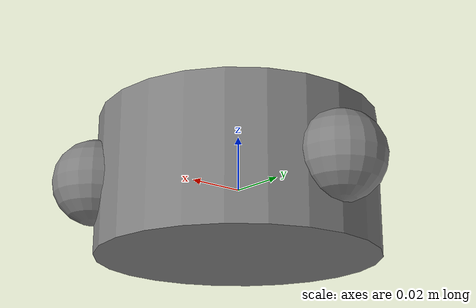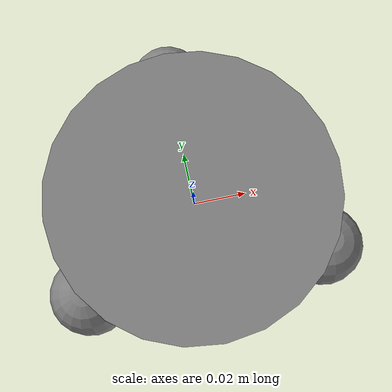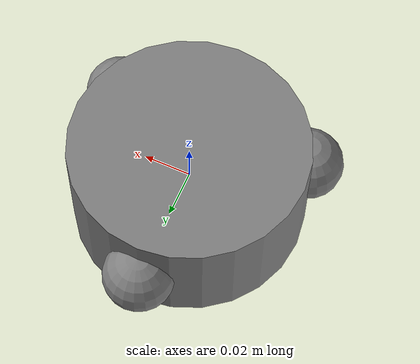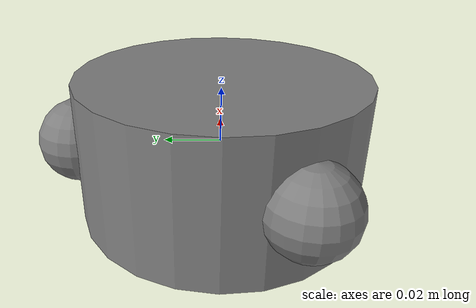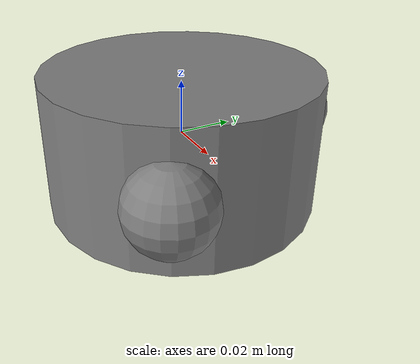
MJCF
<mujoco model="shape_circle">
  <worldbody>
    <body name="shape">
      <geom name="puck" type="cylinder" friction="0.5 0.01 0.0001" mass="0.07" size="0.05 0.025 0" pos="0.0 0.0 0.0" />
      <site name="attractor_site1" pos="0.0 0.05 0.0" size="0.015" />
      <site name="attractor_site2" pos="-0.0433 -0.025 0.0" size="0.015" />
      <site name="attractor_site3" pos="0.0433 -0.025 0.0" size="0.015" />
    </body>
  </worldbody>
</mujoco>
